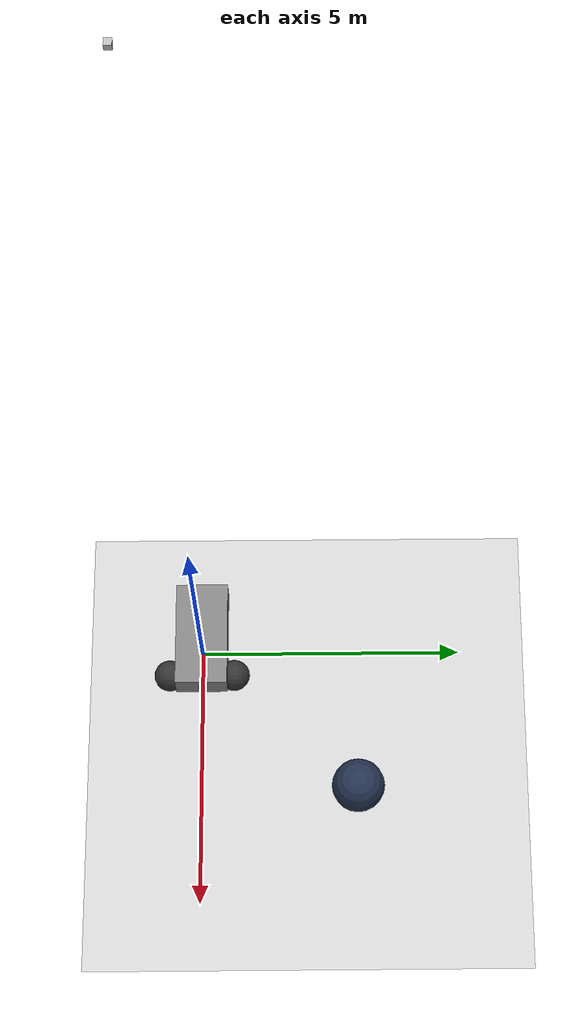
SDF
<sdf version="1.6">
 <world name="ros_ign_tutorial">
  <physics name="1ms" type="ignored">
   <max_step_size>0.001</max_step_size>
   <real_time_factor>1.0</real_time_factor>
  </physics>
  <plugin filename="ignition-gazebo-physics-system" name="ignition::gazebo::systems::Physics"/>
  <plugin filename="ignition-gazebo-user-commands-system" name="ignition::gazebo::systems::UserCommands"/>
  <plugin filename="ignition-gazebo-scene-broadcaster-system" name="ignition::gazebo::systems::SceneBroadcaster"/>
  <plugin filename="ignition-gazebo-sensors-system" name="ignition::gazebo::systems::Sensors">
   <render_engine>ogre2</render_engine>
  </plugin>
  <light type="directional" name="sun">
   <pose>0 0 10 0 0 0</pose>
   <diffuse>1 1 1 1</diffuse>
   <specular>0.5 0.5 0.5 1</specular>
   <attenuation>
    <range>1000</range>
    <constant>0.9</constant>
    <linear>0.01</linear>
    <quadratic>0.001</quadratic>
   </attenuation>
   <direction>-0.5 0.1 -0.9</direction>
  </light>
  <model name="ground_plane">
   <static>true</static>
   <link name="link">
    <collision name="collision"><geometry><plane><normal>0 0 1</normal></plane></geometry></collision>
    <visual name="visual">
     <geometry><plane><normal>0 0 1</normal><size>100 100</size></plane></geometry>
     <material>
      <ambient>0.8 0.8 0.8 1</ambient>
      <diffuse>0.8 0.8 0.8 1</diffuse>
      <specular>0.8 0.8 0.8 1</specular>
     </material>
    </visual>
   </link>
  </model>
  <model name="vehicle">
   <pose>0 0 0.325 0 -0 0</pose>
   <link name="chassis">
    <pose>-0.151427 -0 0.175 0 -0 0</pose>
    <inertial>
     <mass>1.14395</mass>
     <inertia>
      <ixx>0.126164</ixx>
      <ixy>0</ixy>
      <ixz>0</ixz>
      <iyy>0.416519</iyy>
      <iyz>0</iyz>
      <izz>0.481014</izz>
     </inertia>
    </inertial>
    <visual name="visual">
     <geometry><box><size>2.01142 1 0.568726</size></box></geometry>
     <material>
      <ambient>0.5 0.5 0.5 1</ambient>
      <diffuse>0.5 0.5 0.5 1</diffuse>
      <specular>0.5 0.5 0.5 1</specular>
     </material>
    </visual>
    <collision name="collision"><geometry><box><size>2.01142 1 0.568726</size></box></geometry></collision>
   </link>
   <link name="left_wheel">
    <pose>0.554283 0.625029 -0.025 -1.5707 0 0</pose>
    <inertial>
     <mass>2</mass>
     <inertia><ixx>0.145833</ixx><ixy>0</ixy><ixz>0</ixz><iyy>0.145833</iyy><iyz>0</iyz><izz>0.125</izz></inertia>
    </inertial>
    <visual name="visual">
     <geometry><sphere><radius>0.3</radius></sphere></geometry>
     <material>
      <ambient>0.2 0.2 0.2 1</ambient>
      <diffuse>0.2 0.2 0.2 1</diffuse>
      <specular>0.2 0.2 0.2 1</specular>
     </material>
    </visual>
    <collision name="collision"><geometry><sphere><radius>0.3</radius></sphere></geometry></collision>
   </link>
   <link name="right_wheel">
    <pose>0.554282 -0.625029 -0.025 -1.5707 0 0</pose>
    <inertial>
     <mass>2</mass>
     <inertia><ixx>0.145833</ixx><ixy>0</ixy><ixz>0</ixz><iyy>0.145833</iyy><iyz>0</iyz><izz>0.125</izz></inertia>
    </inertial>
    <visual name="visual">
     <geometry><sphere><radius>0.3</radius></sphere></geometry>
     <material>
      <ambient>0.2 0.2 0.2 1</ambient>
      <diffuse>0.2 0.2 0.2 1</diffuse>
      <specular>0.2 0.2 0.2 1</specular>
     </material>
    </visual>
    <collision name="collision"><geometry><sphere><radius>0.3</radius></sphere></geometry></collision>
   </link>
   <link name="caster">
    <pose>-0.957138 -0 -0.125 0 -0 0</pose>
    <inertial>
     <mass>1</mass>
     <inertia><ixx>0.1</ixx><ixy>0</ixy><ixz>0</ixz><iyy>0.1</iyy><iyz>0</iyz><izz>0.1</izz></inertia>
    </inertial>
    <visual name="visual">
     <geometry><sphere><radius>0.2</radius></sphere></geometry>
     <material>
      <ambient>0.2 0.2 0.2 1</ambient>
      <diffuse>0.2 0.2 0.2 1</diffuse>
      <specular>0.2 0.2 0.2 1</specular>
     </material>
    </visual>
    <collision name="collision"><geometry><sphere><radius>0.2</radius></sphere></geometry></collision>
   </link>
   <link name="camera">
    <pose>0.85 0 0.25 0 0 0</pose>
    <inertial>
     <mass>0.1</mass>
     <inertia><ixx>0.000166667</ixx><iyy>0.000166667</iyy><izz>0.000166667</izz></inertia>
    </inertial>
    <collision name="collision"><geometry><box><size>0.1 0.1 0.1</size></box></geometry></collision>
    <visual name="visual">
     <geometry><box><size>0.1 0.1 0.1</size></box></geometry>
     <material>
      <ambient>0.2 0.2 0.2 1</ambient>
      <diffuse>0.2 0.2 0.2 1</diffuse>
      <specular>0.2 0.2 0.2 1</specular>
     </material>
    </visual>
    <sensor name="camera" type="camera">
     <camera>
      <horizontal_fov>1.047</horizontal_fov>
      <image><width>320</width><height>240</height></image>
      <clip><near>0.1</near><far>100</far></clip>
     </camera>
     <always_on>1</always_on>
     <update_rate>30</update_rate>
     <visualize>true</visualize>
     <topic>camera</topic>
    </sensor>
   </link>
   <joint name="left_wheel_joint" type="revolute">
    <parent>chassis</parent>
    <child>left_wheel</child>
    <axis><xyz>0 0 1</xyz><limit><lower>-1.79769e+308</lower><upper>1.79769e+308</upper></limit></axis>
   </joint>
   <joint name="right_wheel_joint" type="revolute">
    <parent>chassis</parent>
    <child>right_wheel</child>
    <axis><xyz>0 0 1</xyz><limit><lower>-1.79769e+308</lower><upper>1.79769e+308</upper></limit></axis>
   </joint>
   <joint name="caster_wheel" type="ball"><parent>chassis</parent><child>caster</child></joint>
   <joint name="camera_joint" type="fixed"><parent>chassis</parent><child>camera</child></joint>
   <plugin filename="ignition-gazebo-diff-drive-system" name="ignition::gazebo::systems::DiffDrive">
    <left_joint>left_wheel_joint</left_joint>
    <right_joint>right_wheel_joint</right_joint>
    <wheel_separation>1.25</wheel_separation>
    <wheel_radius>0.3</wheel_radius>
    <odom_publish_frequency>1</odom_publish_frequency>
   </plugin>
  </model>
  <model name="sphere">
   <pose>3 3 1 0 0 0</pose>
   <link name="sphere_link">
    <collision name="sphere_collision"><geometry><sphere><radius>0.5</radius></sphere></geometry></collision>
    <visual name="sphere_visual">
     <geometry><sphere><radius>0.5</radius></sphere></geometry>
     <material>
      <ambient>0.137 0.196 0.31 1</ambient>
      <diffuse>0.137 0.196 0.31 1</diffuse>
      <specular>0.137 0.196 0.31 1</specular>
     </material>
    </visual>
   </link>
  </model>
  <model name="camera">
   <static>true</static>
   <pose>0 0 20.0 0 1.57 0</pose>
   <link name="link">
    <pose>0.05 0.05 0.05 0 0 0</pose>
    <inertial>
     <mass>0.1</mass>
     <inertia><ixx>0.000166667</ixx><iyy>0.000166667</iyy><izz>0.000166667</izz></inertia>
    </inertial>
    <collision name="collision"><geometry><box><size>0.1 0.1 0.1</size></box></geometry></collision>
    <visual name="visual"><geometry><box><size>0.1 0.1 0.1</size></box></geometry></visual>
    <sensor name="camera" type="camera">
     <camera>
      <horizontal_fov>1.047</horizontal_fov>
      <image><width>320</width><height>240</height></image>
      <clip><near>0.1</near><far>100</far></clip>
     </camera>
     <always_on>1</always_on>
     <update_rate>30</update_rate>
     <visualize>true</visualize>
     <topic>camera2</topic>
    </sensor>
   </link>
  </model>
 </world>
</sdf>
